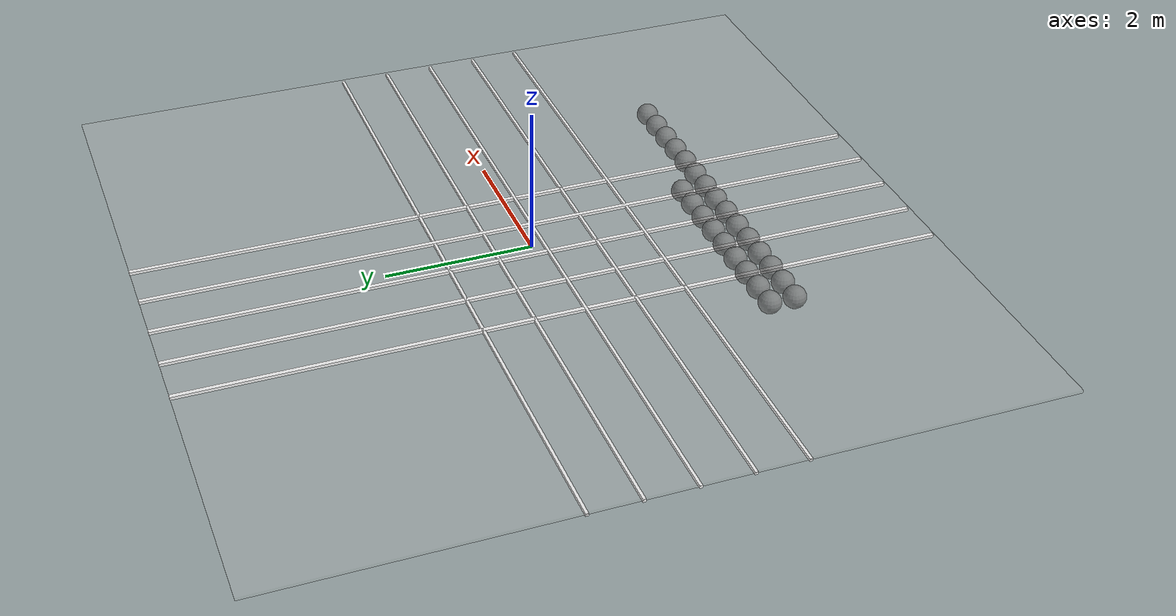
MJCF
<?xml version="1.0" ?>
<mujoco>
    <option timestep="0.005" />
    <worldbody>
        <camera euler="0 0 0" fovy="40" name="rgb" pos="0 0 2.5"></camera>

    <body name="s0" pos="-2.5500000000000003 -2.5500000000000003 0.3">
        <joint type="free" stiffness="0" damping="0" frictionloss="0.1" armature="0"/>
        <geom mass="1.0" friction="1 1 1" pos="0 0 0" rgba="0.5 0.5 0.5 0.75" size="0.15" type="sphere"/>
    </body>
    <body name="s1" pos="-2.2100000000000004 -2.5500000000000003 0.3">
        <joint type="free" stiffness="0" damping="0" frictionloss="0.1" armature="0"/>
        <geom mass="1.0" friction="1 1 1" pos="0 0 0" rgba="0.5 0.5 0.5 0.75" size="0.15" type="sphere"/>
    </body>
    <body name="s2" pos="-1.87 -2.5500000000000003 0.3">
        <joint type="free" stiffness="0" damping="0" frictionloss="0.1" armature="0"/>
        <geom mass="1.0" friction="1 1 1" pos="0 0 0" rgba="0.5 0.5 0.5 0.75" size="0.15" type="sphere"/>
    </body>
    <body name="s3" pos="-1.5300000000000002 -2.5500000000000003 0.3">
        <joint type="free" stiffness="0" damping="0" frictionloss="0.1" armature="0"/>
        <geom mass="1.0" friction="1 1 1" pos="0 0 0" rgba="0.5 0.5 0.5 0.75" size="0.15" type="sphere"/>
    </body>
    <body name="s4" pos="-1.1900000000000002 -2.5500000000000003 0.3">
        <joint type="free" stiffness="0" damping="0" frictionloss="0.1" armature="0"/>
        <geom mass="1.0" friction="1 1 1" pos="0 0 0" rgba="0.5 0.5 0.5 0.75" size="0.15" type="sphere"/>
    </body>
    <body name="s5" pos="-0.8500000000000001 -2.5500000000000003 0.3">
        <joint type="free" stiffness="0" damping="0" frictionloss="0.1" armature="0"/>
        <geom mass="1.0" friction="1 1 1" pos="0 0 0" rgba="0.5 0.5 0.5 0.75" size="0.15" type="sphere"/>
    </body>
    <body name="s6" pos="-0.5100000000000002 -2.5500000000000003 0.3">
        <joint type="free" stiffness="0" damping="0" frictionloss="0.1" armature="0"/>
        <geom mass="1.0" friction="1 1 1" pos="0 0 0" rgba="0.5 0.5 0.5 0.75" size="0.15" type="sphere"/>
    </body>
    <body name="s7" pos="-0.16999999999999993 -2.5500000000000003 0.3">
        <joint type="free" stiffness="0" damping="0" frictionloss="0.1" armature="0"/>
        <geom mass="1.0" friction="1 1 1" pos="0 0 0" rgba="0.5 0.5 0.5 0.75" size="0.15" type="sphere"/>
    </body>
    <body name="s8" pos="0.16999999999999993 -2.5500000000000003 0.3">
        <joint type="free" stiffness="0" damping="0" frictionloss="0.1" armature="0"/>
        <geom mass="1.0" friction="1 1 1" pos="0 0 0" rgba="0.5 0.5 0.5 0.75" size="0.15" type="sphere"/>
    </body>
    <body name="s9" pos="0.5099999999999998 -2.5500000000000003 0.3">
        <joint type="free" stiffness="0" damping="0" frictionloss="0.1" armature="0"/>
        <geom mass="1.0" friction="1 1 1" pos="0 0 0" rgba="0.5 0.5 0.5 0.75" size="0.15" type="sphere"/>
    </body>
    <body name="s10" pos="0.8500000000000001 -2.5500000000000003 0.3">
        <joint type="free" stiffness="0" damping="0" frictionloss="0.1" armature="0"/>
        <geom mass="1.0" friction="1 1 1" pos="0 0 0" rgba="0.5 0.5 0.5 0.75" size="0.15" type="sphere"/>
    </body>
    <body name="s11" pos="1.19 -2.5500000000000003 0.3">
        <joint type="free" stiffness="0" damping="0" frictionloss="0.1" armature="0"/>
        <geom mass="1.0" friction="1 1 1" pos="0 0 0" rgba="0.5 0.5 0.5 0.75" size="0.15" type="sphere"/>
    </body>
    <body name="s12" pos="1.5299999999999998 -2.5500000000000003 0.3">
        <joint type="free" stiffness="0" damping="0" frictionloss="0.1" armature="0"/>
        <geom mass="1.0" friction="1 1 1" pos="0 0 0" rgba="0.5 0.5 0.5 0.75" size="0.15" type="sphere"/>
    </body>
    <body name="s13" pos="1.8699999999999997 -2.5500000000000003 0.3">
        <joint type="free" stiffness="0" damping="0" frictionloss="0.1" armature="0"/>
        <geom mass="1.0" friction="1 1 1" pos="0 0 0" rgba="0.5 0.5 0.5 0.75" size="0.15" type="sphere"/>
    </body>
    <body name="s14" pos="2.2100000000000004 -2.5500000000000003 0.3">
        <joint type="free" stiffness="0" damping="0" frictionloss="0.1" armature="0"/>
        <geom mass="1.0" friction="1 1 1" pos="0 0 0" rgba="0.5 0.5 0.5 0.75" size="0.15" type="sphere"/>
    </body>
    <body name="s15" pos="-2.5500000000000003 -2.2100000000000004 0.3">
        <joint type="free" stiffness="0" damping="0" frictionloss="0.1" armature="0"/>
        <geom mass="1.0" friction="1 1 1" pos="0 0 0" rgba="0.5 0.5 0.5 0.75" size="0.15" type="sphere"/>
    </body>
    <body name="s16" pos="-2.2100000000000004 -2.2100000000000004 0.3">
        <joint type="free" stiffness="0" damping="0" frictionloss="0.1" armature="0"/>
        <geom mass="1.0" friction="1 1 1" pos="0 0 0" rgba="0.5 0.5 0.5 0.75" size="0.15" type="sphere"/>
    </body>
    <body name="s17" pos="-1.87 -2.2100000000000004 0.3">
        <joint type="free" stiffness="0" damping="0" frictionloss="0.1" armature="0"/>
        <geom mass="1.0" friction="1 1 1" pos="0 0 0" rgba="0.5 0.5 0.5 0.75" size="0.15" type="sphere"/>
    </body>
    <body name="s18" pos="-1.5300000000000002 -2.2100000000000004 0.3">
        <joint type="free" stiffness="0" damping="0" frictionloss="0.1" armature="0"/>
        <geom mass="1.0" friction="1 1 1" pos="0 0 0" rgba="0.5 0.5 0.5 0.75" size="0.15" type="sphere"/>
    </body>
    <body name="s19" pos="-1.1900000000000002 -2.2100000000000004 0.3">
        <joint type="free" stiffness="0" damping="0" frictionloss="0.1" armature="0"/>
        <geom mass="1.0" friction="1 1 1" pos="0 0 0" rgba="0.5 0.5 0.5 0.75" size="0.15" type="sphere"/>
    </body>
    <body name="s20" pos="-0.8500000000000001 -2.2100000000000004 0.3">
        <joint type="free" stiffness="0" damping="0" frictionloss="0.1" armature="0"/>
        <geom mass="1.0" friction="1 1 1" pos="0 0 0" rgba="0.5 0.5 0.5 0.75" size="0.15" type="sphere"/>
    </body>
    <body name="s21" pos="-0.5100000000000002 -2.2100000000000004 0.3">
        <joint type="free" stiffness="0" damping="0" frictionloss="0.1" armature="0"/>
        <geom mass="1.0" friction="1 1 1" pos="0 0 0" rgba="0.5 0.5 0.5 0.75" size="0.15" type="sphere"/>
    </body>
    <body name="s22" pos="-0.16999999999999993 -2.2100000000000004 0.3">
        <joint type="free" stiffness="0" damping="0" frictionloss="0.1" armature="0"/>
        <geom mass="1.0" friction="1 1 1" pos="0 0 0" rgba="0.5 0.5 0.5 0.75" size="0.15" type="sphere"/>
    </body>
    <body name="s23" pos="0.16999999999999993 -2.2100000000000004 0.3">
        <joint type="free" stiffness="0" damping="0" frictionloss="0.1" armature="0"/>
        <geom mass="1.0" friction="1 1 1" pos="0 0 0" rgba="0.5 0.5 0.5 0.75" size="0.15" type="sphere"/>
    </body>
        <body name="floor" pos="0 0 0.025">
            <geom condim="3" size="5.1000000000000005 5.1000000000000005 0.02" rgba="0.8 0.8 0.8 0.2" type="box"/>
        </body>
        <body name="line0h" pos="0 -1.5300000000000002 0.0">
        <geom condim="1" friction="0 0 0" size="5.1000000000000005 0.02 0.02" rgba="1.0 1.0 1.0 1" type="box"/>
    </body>
    <body name="line0v" pos="-1.5300000000000002 0 0.0">
        <geom condim="1" friction="0 0 0" size="0.03 5.1000000000000005 0.02" rgba="1.0 1.0 1.0 1" type="box"/>
    </body><body name="line1h" pos="0 -0.8500000000000001 0.0">
        <geom condim="1" friction="0 0 0" size="5.1000000000000005 0.02 0.02" rgba="1.0 1.0 1.0 1" type="box"/>
    </body>
    <body name="line1v" pos="-0.8500000000000001 0 0.0">
        <geom condim="1" friction="0 0 0" size="0.03 5.1000000000000005 0.02" rgba="1.0 1.0 1.0 1" type="box"/>
    </body><body name="line2h" pos="0 -0.17000000000000037 0.0">
        <geom condim="1" friction="0 0 0" size="5.1000000000000005 0.02 0.02" rgba="1.0 1.0 1.0 1" type="box"/>
    </body>
    <body name="line2v" pos="-0.17000000000000037 0 0.0">
        <geom condim="1" friction="0 0 0" size="0.03 5.1000000000000005 0.02" rgba="1.0 1.0 1.0 1" type="box"/>
    </body><body name="line3h" pos="0 0.5099999999999998 0.0">
        <geom condim="1" friction="0 0 0" size="5.1000000000000005 0.02 0.02" rgba="1.0 1.0 1.0 1" type="box"/>
    </body>
    <body name="line3v" pos="0.5099999999999998 0 0.0">
        <geom condim="1" friction="0 0 0" size="0.03 5.1000000000000005 0.02" rgba="1.0 1.0 1.0 1" type="box"/>
    </body><body name="line4h" pos="0 1.19 0.0">
        <geom condim="1" friction="0 0 0" size="5.1000000000000005 0.02 0.02" rgba="1.0 1.0 1.0 1" type="box"/>
    </body>
    <body name="line4v" pos="1.19 0 0.0">
        <geom condim="1" friction="0 0 0" size="0.03 5.1000000000000005 0.02" rgba="1.0 1.0 1.0 1" type="box"/>
    </body>
    </worldbody>
</mujoco>
